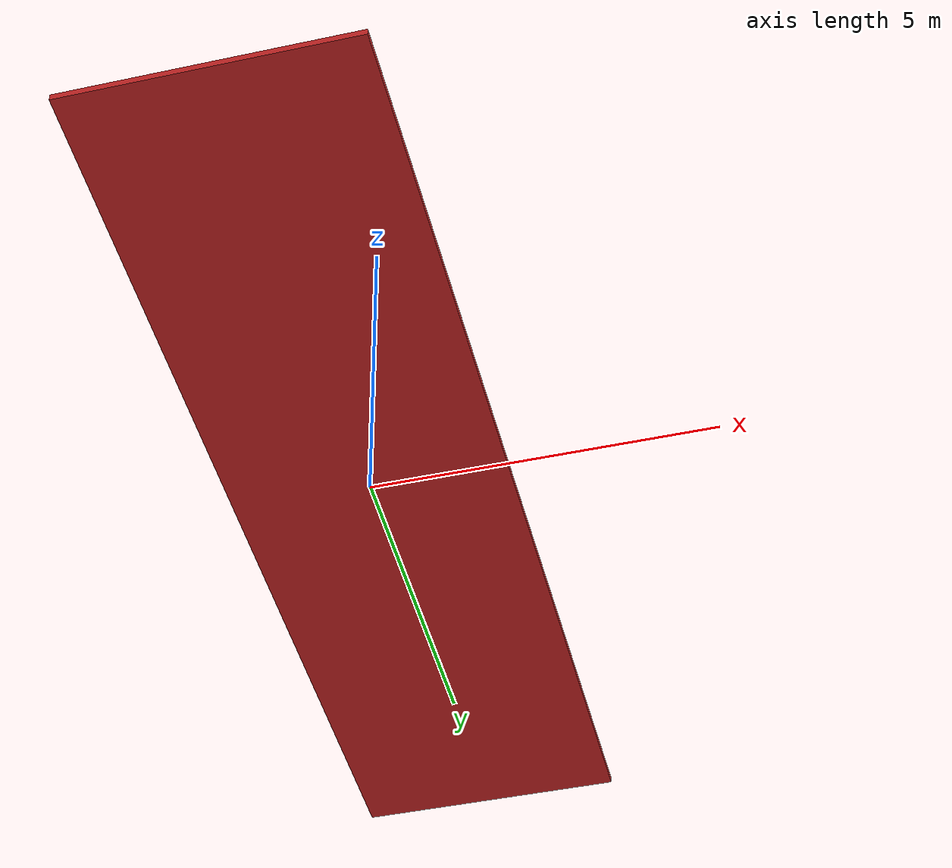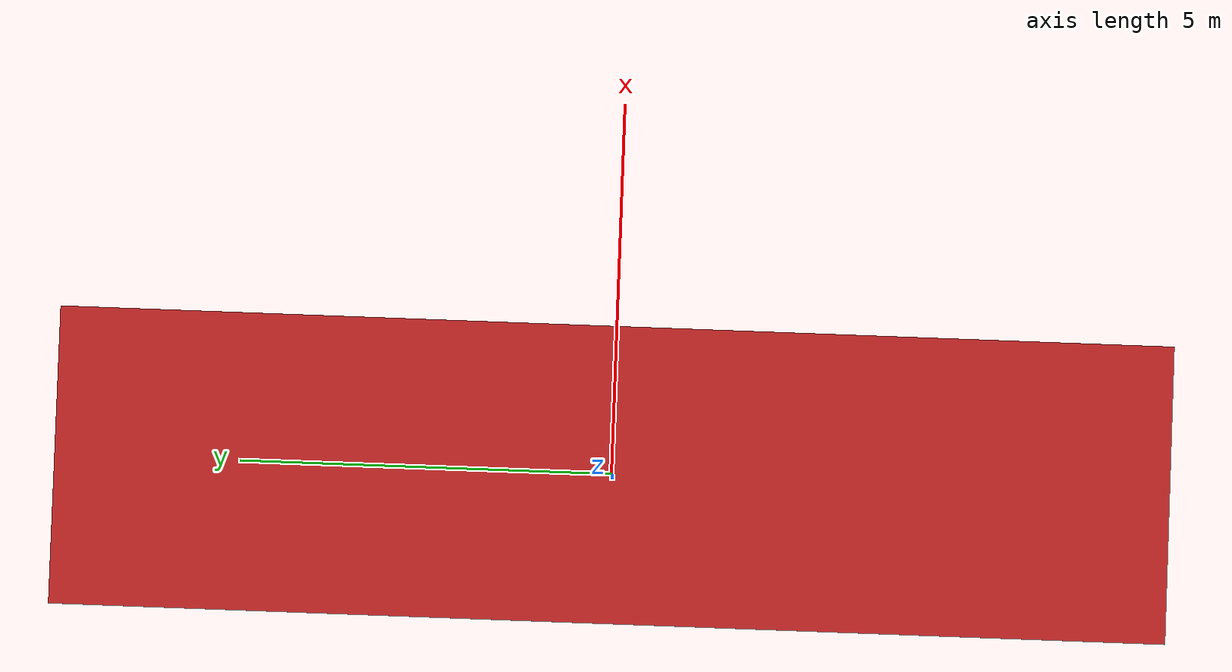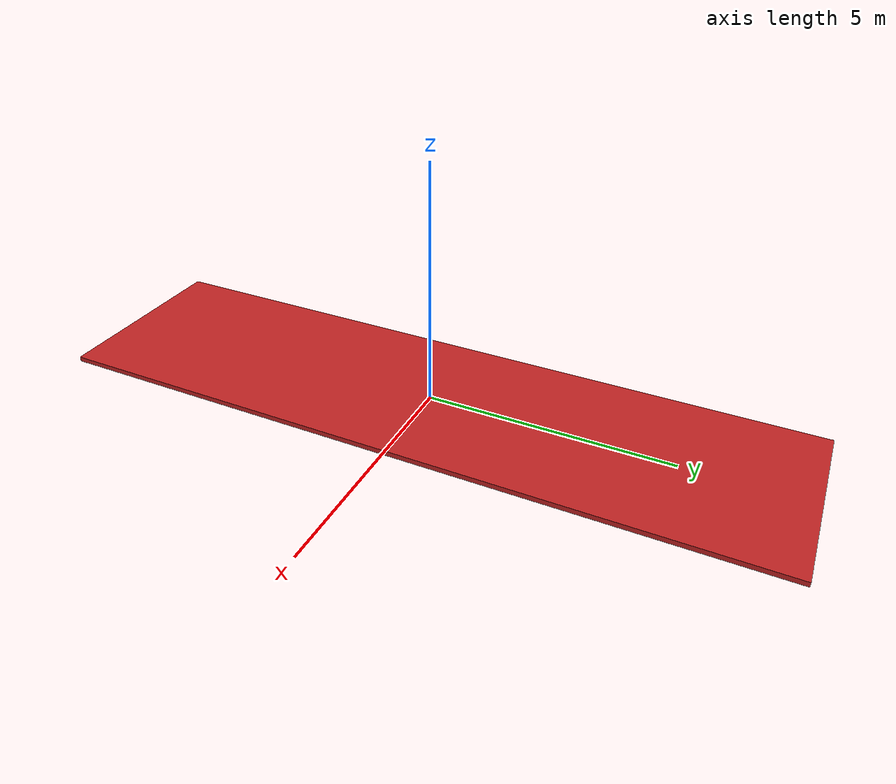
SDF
<?xml version="1.0" ?>
<sdf version='1.4'>
  <model name='testing_surface'>
      <static>1</static>
      <pose frame=''>0 0 0 0 0 0</pose>
      <link name='testing_surface_link'>
        <inertial>
          <mass>0.1</mass>
          <inertia>
            <ixx>8.41666666667e-05</ixx>
            <ixy>0</ixy>
            <ixz>0</ixz>
            <iyy>3.08333333333e-05</iyy>
            <iyz>0</iyz>
            <izz>0.000113333333333</izz>
          </inertia>
        </inertial>
        <collision name='testing_surface_link_collision'>
          <geometry>
            <box>
              <size>4.0 15.0 0.1</size>
            </box>
          </geometry>
          <max_contacts>1000</max_contacts>
          <surface>
            <contact>
              <ode/>
            </contact>
            <bounce/>
            <friction>
              <torsional>
                <ode/>
              </torsional>
              <ode/>
            </friction>
          </surface>
        </collision>
        <visual name='testing_surface_link_visual'>
          <geometry>
            <box>
              <size>4.0 15.0 0.1</size> <!-- original size is 1.0 -->
            </box>
          </geometry>
          <material>
            <script>
              <uri>file://media/materials/scripts/gazebo.material</uri>
              <name>Gazebo/Red</name>
            </script>
          </material>
        </visual>
        <self_collide>0</self_collide>
        <kinematic>0</kinematic>
      </link>
    </model>
</sdf>
